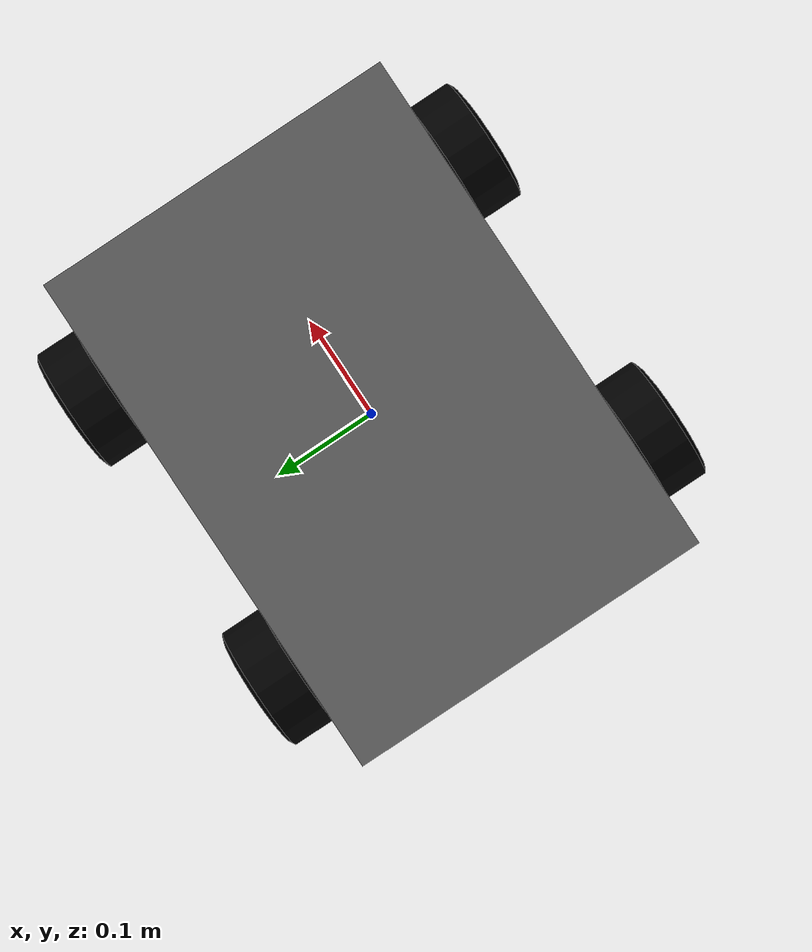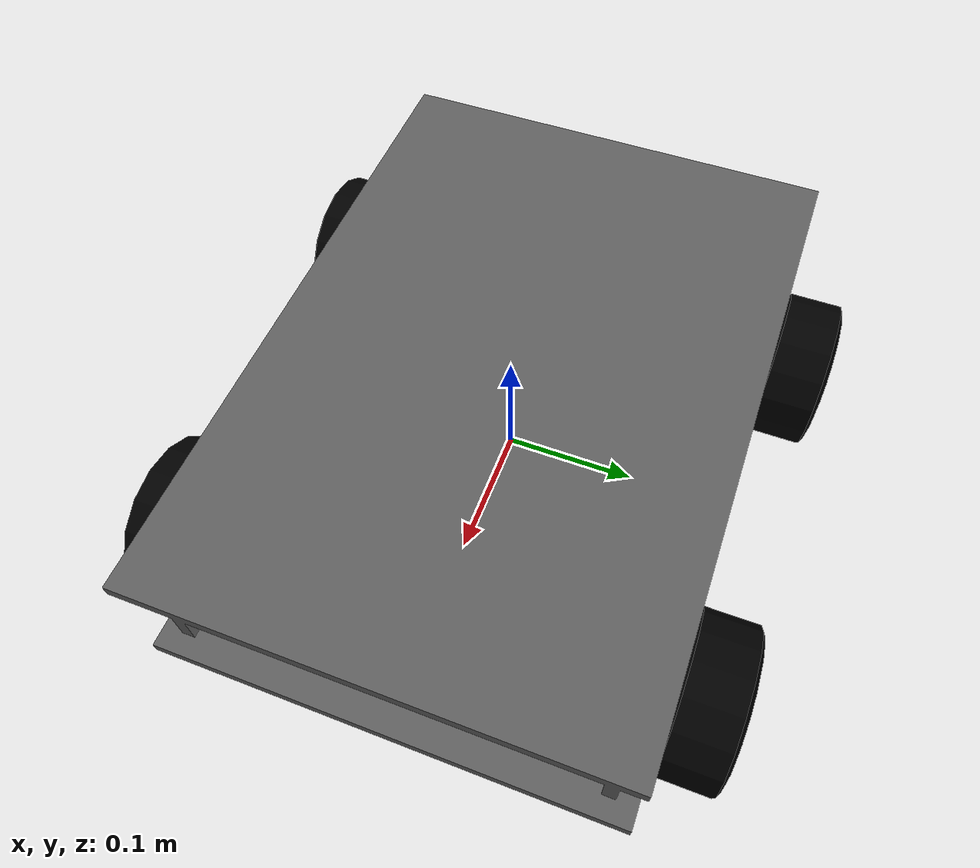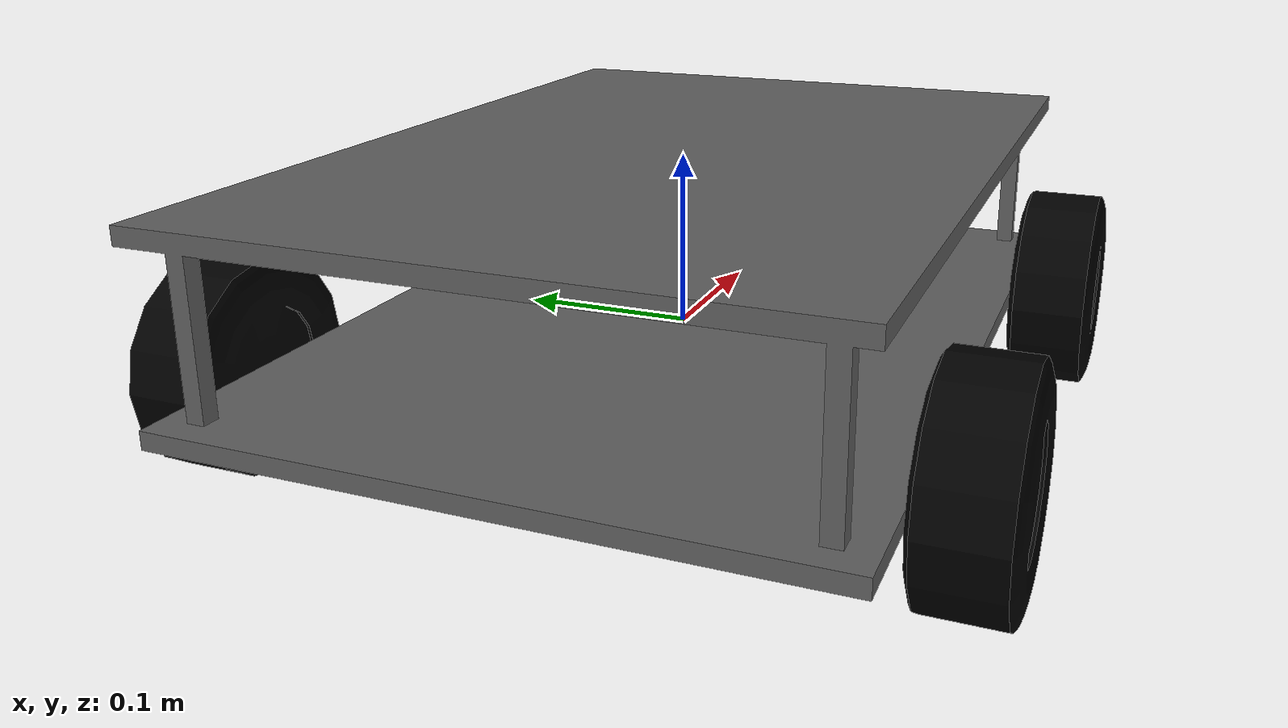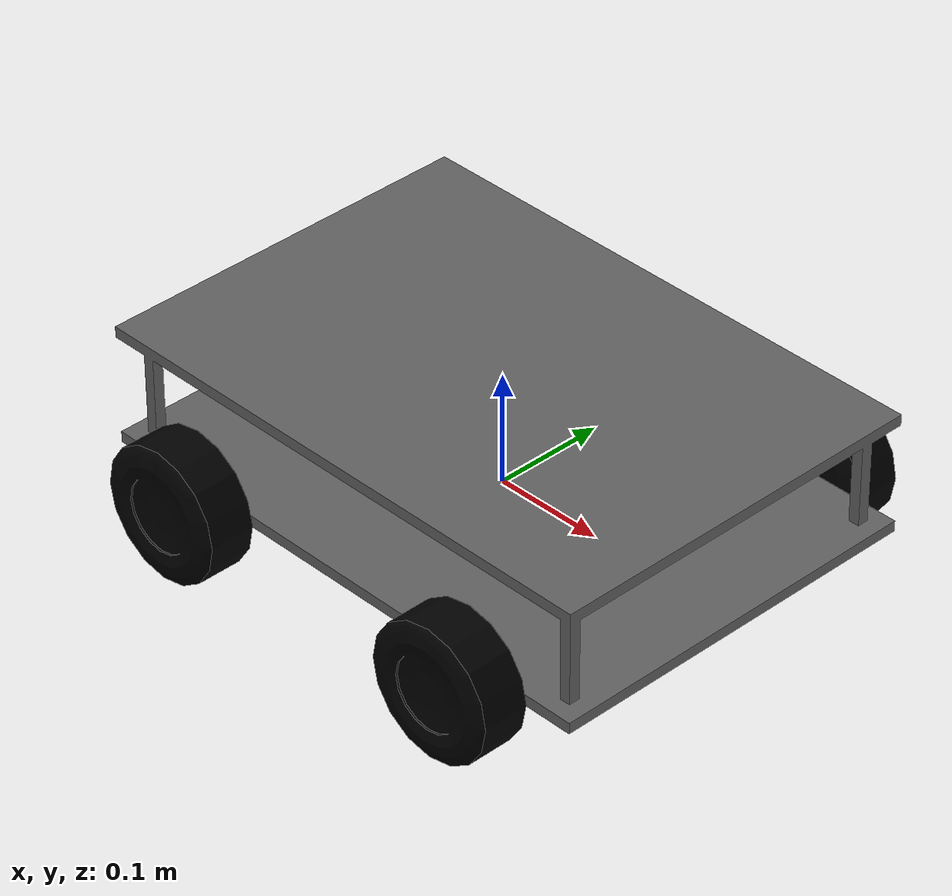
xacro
<?xml version="1.0"?>
<robot xmlns:xacro="http://www.ros.org/wiki/xacro" name="raido-bot">

    <material name="grey">
        <color rgba="0.38 0.38 0.38 1.0" />
    </material>
    <material name="black">
        <color rgba="0 0 0 1.0" />
    </material>

    <xacro:property name="wheel_radius" value="0.06" />
    <xacro:property name="wheel_length" value="0.05" />
    <xacro:property name="base_length" value="0.5" />
    <xacro:property name="base_width" value="0.35" />
    <xacro:property name="base_height" value="0.11" />
    <xacro:property name="joint_offset" value="0.1" />

    <link name="base_link">
        <inertial>
            <origin xyz="0.0 0.0 0.0" rpy="0.0 0.0 0.0" />
            <mass value="5.0" />
            <inertia ixx="0.043125" ixy="0.0" ixz="0.0" iyy="0.0890625" iyz="0.0" izz="0.1040625" />
        </inertial>
        <collision name="base_link_col">
            <origin xyz="0.0 0.0 0.0" rpy="0.0 0.0 0.0" />
            <geometry>
                <box size="${base_length} ${base_width} ${base_height}" />
            </geometry>
        </collision>
        <visual name="base_link_vis">
            <origin xyz="0.0 0.0 0.0" rpy="0.0 0.0 0.0" />
            <geometry>
                <mesh filename="package://raido-bot_description/meshes/base_link.stl" scale="1 1 1" />
            </geometry>
            <material name="grey" />
        </visual>
    </link>

    <xacro:macro name="wheel_link" params="name x y z">
        <link name="${name}">
            <inertial>
                <origin xyz="0.0 0.0 0.0" rpy="0.0 0.0 0.0" />
                <mass value="1.0" />
                <inertia ixx="0.0025" ixy="0.0" ixz="0.0" iyy="0.0025" iyz="0.0" izz="0.001" />
            </inertial>
            <collision name="${name}_col">
                <origin xyz="0.0 0.0 0.0" rpy="0.0 0.0 0.0" />
                <geometry>
                    <cylinder radius="${wheel_radius}" length="${wheel_length}" />
                </geometry>
            </collision>
            <visual name="${name}_vis">
                <origin xyz="0.0 0.0 0.0" rpy="0.0 0.0 0.0" />
                <geometry>
                    <mesh filename="package://raido-bot_description/meshes/wheel_link.stl"
                        scale="1 1 1" />
                </geometry>
                <material name="black" />
            </visual>
        </link>

        <joint name="${name}_joint" type="continuous">
            <origin xyz="${x} ${y} ${z}" rpy="0.0 0.0 0.0" />
            <parent link="base_link" />
            <child link="${name}" />
            <axis xyz="0 1 0" />
            <limit lower="0.0" upper="0.0" effort="1.0" velocity="1.0" />
        </joint>
    </xacro:macro>

    <xacro:wheel_link name="wheel_link_fr" x="${(base_length / 2) - joint_offset}"
        y="${(base_width / 2) + (wheel_length / 2)}" z="0.0" />

    <xacro:wheel_link name="wheel_link_br" x="-${(base_length / 2) - joint_offset}"
        y="${(base_width / 2) + (wheel_length / 2)}" z="0.0" />

    <xacro:wheel_link name="wheel_link_fl" x="${(base_length / 2) - joint_offset}"
        y="-${(base_width / 2) + (wheel_length / 2)}" z="0.0" />

    <xacro:wheel_link name="wheel_link_bl" x="-${(base_length / 2) - joint_offset}"
        y="-${(base_width / 2) + (wheel_length / 2)}" z="0.0" />

    <gazebo>
        <plugin
            filename="ignition-gazebo-diff-drive-system"
            name="gz::sim::systems::DiffDrive">
            <left_joint>wheel_link_fl_joint</left_joint>
            <right_joint>wheel_link_fr_joint</right_joint>
            <wheel_separation>0.35</wheel_separation>
            <wheel_radius>0.06</wheel_radius>
            <odom_publish_frequency>0.1</odom_publish_frequency>
            <max_linear_acceleration>1</max_linear_acceleration>
            <min_linear_acceleration>-1</min_linear_acceleration>
            <max_angular_acceleration>2</max_angular_acceleration>
            <min_angular_acceleration>-2</min_angular_acceleration>
            <max_linear_velocity>0.5</max_linear_velocity>
            <min_linear_velocity>-0.5</min_linear_velocity>
            <max_angular_velocity>1</max_angular_velocity>
            <min_angular_velocity>-1</min_angular_velocity>
        </plugin>
    </gazebo>
</robot>
